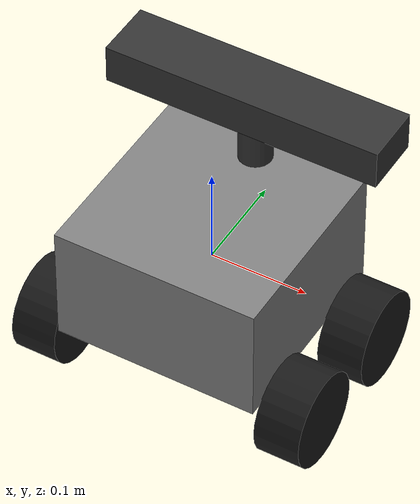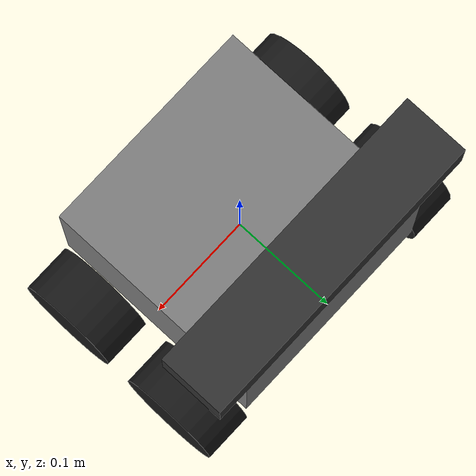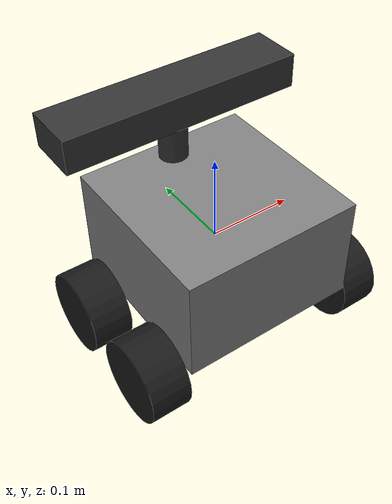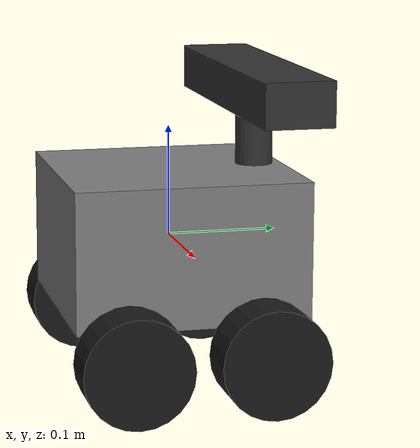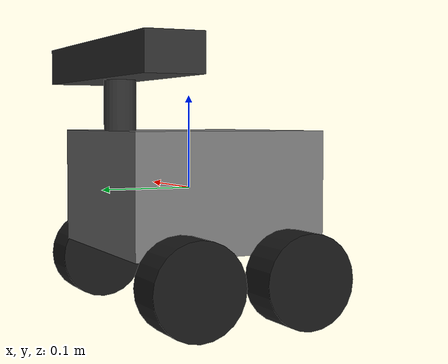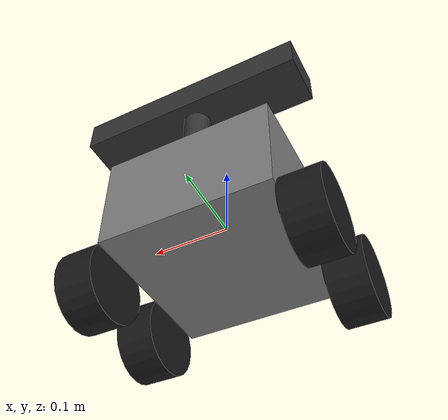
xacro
<?xml version="1.0"?>
<robot name="gptpet" xmlns:xacro="http://www.ros.org/wiki/xacro">

  <xacro:property name="wheel_radius" value="0.0485" />
  <xacro:property name="wheel_length" value="0.047" />
  <xacro:property name="wheel_offset_side" value="0.003" />
  <xacro:property name="wheel_offset_front" value="0.05" />
  <xacro:property name="wheel_separation_length" value="0.12" />
  <xacro:property name="wheel_separation_down" value="0.023" />

  <xacro:property name="body_height" value="0.125" />
  <xacro:property name="body_width" value="0.21" />
  <xacro:property name="kinect_height" value="0.04" />
  <xacro:property name="kinect_width" value="0.285" />
  <xacro:property name="kinect_depth" value="0.062" />
  <xacro:property name="kinect_offset" value="0.053" />

  <!-- ========= CHASSIS LINK ========= -->
  <xacro:macro name="body_box">
    <box size="${body_width} ${body_width} ${body_height}"/>
  </xacro:macro>
  <link name="base_link">
    <visual>
      <geometry>
        <xacro:body_box />
      </geometry>
      <material name="Grey">
        <color rgba="0.5 0.5 0.5 1.0"/>
      </material>
    </visual>
    <collision>
      <geometry>
        <xacro:body_box />
      </geometry>
    </collision>
    <inertial>
      <mass value="10.0"/>
      <inertia ixx="0.1" ixy="0.0" ixz="0.0" iyy="0.1" iyz="0.0" izz="0.1"/>
    </inertial>
  </link>

  <!-- ========= WHEEL LINKS ========= -->
  <xacro:macro name="wheel">
    <visual>
      <origin rpy="0 1.5708 0"/>
      <geometry>
        <cylinder radius="${wheel_radius}" length="${wheel_length}"/>
      </geometry>
      <material name="Black">
        <color rgba="0.1 0.1 0.1 1.0"/>
      </material>
    </visual>
    <collision>
      <origin rpy="0 1.5708 0"/>
      <geometry>
        <cylinder radius="${wheel_radius}" length="${wheel_length}"/>
      </geometry>
    </collision>
    <inertial>
      <mass value="1.0"/>
      <inertia ixx="0.001" ixy="0.0" ixz="0.0" iyy="0.001" iyz="0.0" izz="0.001"/>
    </inertial>
  </xacro:macro>
  <link name="wheel_left_1_link">
    <xacro:wheel />
  </link>
  <link name="wheel_left_2_link">
    <xacro:wheel />
  </link>
  <link name="wheel_right_1_link">
    <xacro:wheel />
  </link>
  <link name="wheel_right_2_link">
    <xacro:wheel />
  </link>

  <!-- ========= KINECT-LIKE LASER SENSOR LINK ========= -->
  <xacro:macro name="kinect_box">
    <box size="${kinect_width} ${kinect_depth} ${kinect_height}"/>
  </xacro:macro>
  <link name="base_laser_link">
    <visual>
      <!-- approximate Xbox Kinect 360 housing as a rectangular box -->
      <origin rpy="0 0 0"/>
      <geometry>
        <xacro:kinect_box />
      </geometry>
      <material name="SensorGrey">
        <color rgba="0.2 0.2 0.2 1.0"/>
      </material>
    </visual>
    <visual>
      <origin xyz="0 0 -0.04" rpy="0 0 0"/>
      <geometry>
        <cylinder length="0.1" radius="0.017"/>
      </geometry>
      <material name="SensorGrey">
        <color rgba="0.2 0.2 0.2 1.0"/>
      </material>
    </visual>
    <collision>
      <origin xyz="0 0 0" rpy="0 0 0"/>
      <geometry>
        <box size="0.12 0.05 0.07"/>
      </geometry>
    </collision>
    <inertial>
      <mass value="0.5"/>
      <inertia ixx="0.002" ixy="0" ixz="0" iyy="0.002" iyz="0" izz="0.002"/>
    </inertial>
  </link>
  <joint name="laser_joint" type="fixed">
    <parent link="base_link"/>
    <child  link="base_laser_link"/>
    <origin xyz="0 0.08 ${body_height/2 + kinect_height/2 + kinect_offset}" rpy="0 0 0"/>
  </joint>

  <!-- ========= JOINTS ========= -->
  <xacro:macro name="wheel_origin" params="x_reflect y_reflect">
    <parent link="base_link"/>
    <origin xyz="${x_reflect * (body_width/2 + wheel_length/2 + wheel_offset_side)} ${y_reflect * wheel_separation_length/2} ${-body_height/2 -wheel_separation_down}" rpy="0 0 0"/>
    <axis  xyz="0 0 1"/>
  </xacro:macro>
  <joint name="velocity_left_1_joint" type="continuous">
    <child link="wheel_left_1_link"/>
    <xacro:wheel_origin x_reflect="1" y_reflect="1" />
  </joint>
  <joint name="velocity_left_2_joint" type="continuous">
    <child link="wheel_left_2_link"/>
    <xacro:wheel_origin x_reflect="-1" y_reflect="1" />
  </joint>
  <joint name="velocity_right_1_joint" type="continuous">
    <child  link="wheel_right_1_link"/>
    <xacro:wheel_origin x_reflect="1" y_reflect="-1" />
  </joint>
  <joint name="velocity_right_2_joint" type="continuous">
    <child link="wheel_right_2_link"/>
    <xacro:wheel_origin x_reflect="-1" y_reflect="-1" />
  </joint>

  <!-- ========= TRANSMISSIONS ========= -->
  <transmission name="trans_vel_left_1">
    <type>transmission_interface/SimpleTransmission</type>
    <joint name="velocity_left_1_joint">
      <hardwareInterface>velocity</hardwareInterface>
    </joint>
    <actuator name="motor_left_1">
      <hardwareInterface>velocity</hardwareInterface>
      <mechanicalReduction>1</mechanicalReduction>
    </actuator>
  </transmission>
  <transmission name="trans_vel_left_2">
    <type>transmission_interface/SimpleTransmission</type>
    <joint name="velocity_left_2_joint">
      <hardwareInterface>velocity</hardwareInterface>
    </joint>
    <actuator name="motor_left_2">
      <hardwareInterface>velocity</hardwareInterface>
      <mechanicalReduction>1</mechanicalReduction>
    </actuator>
  </transmission>
  <transmission name="trans_vel_right_1">
    <type>transmission_interface/SimpleTransmission</type>
    <joint name="velocity_right_1_joint">
      <hardwareInterface>velocity</hardwareInterface>
    </joint>
    <actuator name="motor_right_1">
      <hardwareInterface>velocity</hardwareInterface>
      <mechanicalReduction>1</mechanicalReduction>
    </actuator>
  </transmission>
  <transmission name="trans_vel_right_2">
    <type>transmission_interface/SimpleTransmission</type>
    <joint name="velocity_right_2_joint">
      <hardwareInterface>velocity</hardwareInterface>
    </joint>
    <actuator name="motor_right_2">
      <hardwareInterface>velocity</hardwareInterface>
      <mechanicalReduction>1</mechanicalReduction>
    </actuator>
  </transmission>

  <!-- ========= Cameras ========= -->
  <link name="camera_link"/>
  <joint name="camera_link_joint" type="fixed">
    <parent link="base_laser_link"/>
    <child link="camera_link"/>
    <origin xyz="0 0 0" rpy="0 0 0"/>
  </joint>

  <link name="camera_depth_frame"/>
  <joint name="camera_depth_joint" type="fixed">
    <parent link="camera_link"/>
    <child link="camera_depth_frame"/>
    <origin xyz="0 0 0" rpy="0 0 0"/>
  </joint>

  <link name="camera_rgb_frame"/>
  <joint name="camera_rgb_joint" type="fixed">
    <parent link="camera_link"/>
    <child link="camera_rgb_frame"/>
    <origin xyz="0 0 0" rpy="0 0 0"/>
  </joint>

  <link name="camera_rgb_optical_frame"/>
  <joint name="camera_rgb_optical_joint" type="fixed">
    <parent link="camera_rgb_frame"/>
    <child link="camera_rgb_optical_frame"/>
    <origin xyz="0 0 0" rpy="-1.5708 0 -1.5708"/>
  </joint>

  <!-- ========= ROS2_CONTROL PLUGIN ========= -->
  <ros2_control name="gptpet" type="system">
    <hardware>
      <!-- Reference the exported plugin name -->
      <plugin>gptpet_hardware/GptpetHardwareInterface</plugin>
      <!-- ESP32 motor driver over USB serial (embedded/arduino_driver/arduino_driver.ino).
           Joint order below must stay L1, L2, R1, R2 to match the firmware's motor order. -->
      <!-- /dev/gptpet_motors comes from bin/robot/99-gptpet-motors.rules; the by-id and ttyACM
           names are fallbacks (the CH343 bridge moves between ttyACM0 and ttyACM1 when re-plugged) -->
      <param name="serial_ports">/dev/gptpet_motors,/dev/serial/by-id/usb-1a86_USB_Single_Serial_5734047665-if00,/dev/ttyACM0,/dev/ttyACM1</param>
      <param name="baud_rate">115200</param>
      <!-- PID gains, PWM floor, max rpm etc. are ROS parameters on /gptpet_motors,
           see startup/config/motor_tuning.yaml -->
      <!-- 11 ppr x 4 edges x 131:1 gearbox, must match COUNTS_PER_REV in the firmware -->
      <param name="encoder_counts_per_rev">5764</param>
      <!-- seconds without a report before reported wheel velocity is zeroed -->
      <param name="feedback_timeout">0.5</param>
    </hardware>

    <joint name="velocity_left_1_joint">
      <command_interface name="velocity"/>
      <state_interface name="velocity"/>
      <state_interface name="position"/>
    </joint>
    <joint name="velocity_left_2_joint">
      <command_interface name="velocity"/>
      <state_interface name="velocity"/>
      <state_interface name="position"/>
    </joint>
    <joint name="velocity_right_1_joint">
      <command_interface name="velocity"/>
      <state_interface name="velocity"/>
      <state_interface name="position"/>
    </joint>
    <joint name="velocity_right_2_joint">
      <command_interface name="velocity"/>
      <state_interface name="velocity"/>
      <state_interface name="position"/>
    </joint>
  </ros2_control>

</robot>
